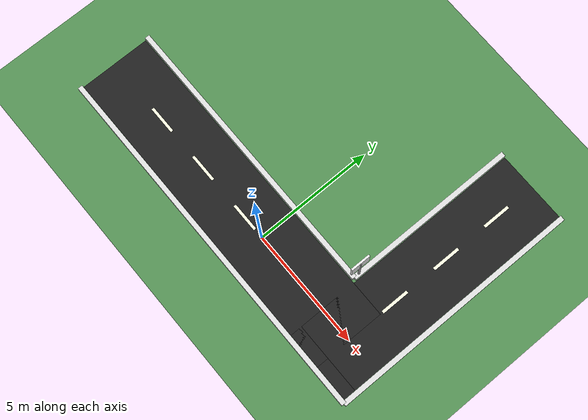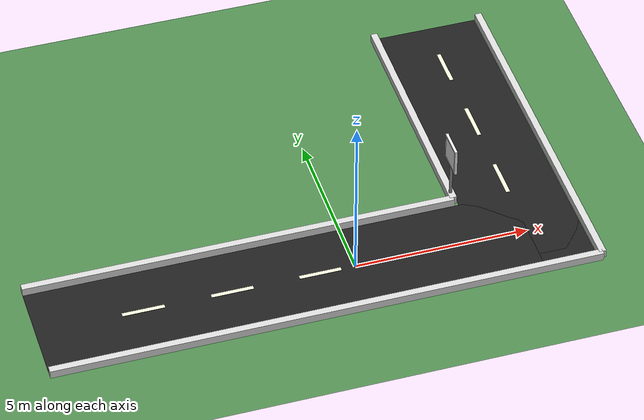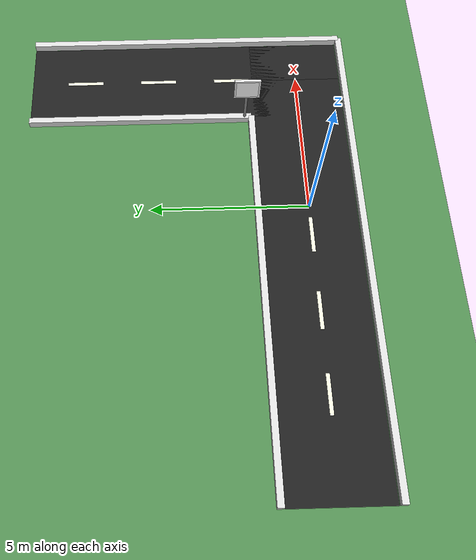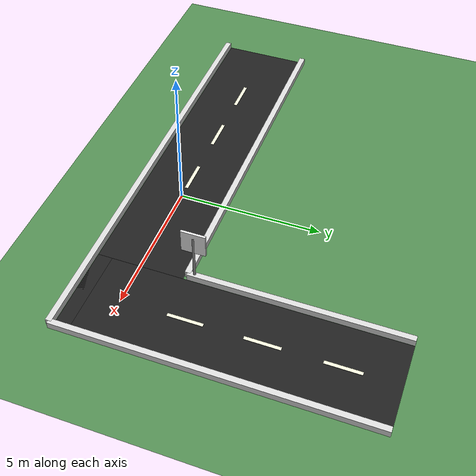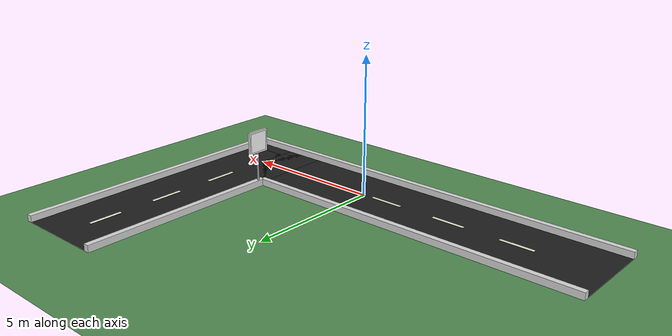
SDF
<sdf version='1.7'>
  <world name='road_world'>
    <light name='sun' type='directional'>
      <cast_shadows>true</cast_shadows>
      <pose>0 0 10 0 0 0</pose>
      <diffuse>0.8 0.8 0.8 1</diffuse>
      <specular>0.2 0.2 0.2 1</specular>
      <attenuation>
        <range>1000</range>
        <constant>0.9</constant>
        <linear>0.01</linear>
        <quadratic>0.001</quadratic>
      </attenuation>
      <direction>-0.5 0.1 -0.9</direction>
    </light>

    <gravity>0 0 -9.8</gravity>
    <magnetic_field>6e-06 2.3e-05 -4.2e-05</magnetic_field>
    <atmosphere type='adiabatic'/>

    <physics name='default_physics' type='ode'>
      <max_step_size>0.001</max_step_size>
      <real_time_factor>1.0</real_time_factor>
      <real_time_update_rate>1000</real_time_update_rate>
    </physics>

    <scene>
      <ambient>0.45 0.45 0.45 1</ambient>
      <background>0.75 0.85 0.95 1</background>
      <shadows>true</shadows>
    </scene>

    <model name='ground_plane'>
      <static>true</static>
      <link name='link'>
        <collision name='collision'>
          <geometry>
            <plane>
              <normal>0 0 1</normal>
              <size>120 120</size>
            </plane>
          </geometry>
          <surface>
            <friction>
              <ode>
                <mu>100</mu>
                <mu2>50</mu2>
              </ode>
            </friction>
          </surface>
        </collision>
        <visual name='visual'>
          <geometry>
            <plane>
              <normal>0 0 1</normal>
              <size>120 120</size>
            </plane>
          </geometry>
          <material>
            <ambient>0.32 0.55 0.32 1</ambient>
            <diffuse>0.32 0.55 0.32 1</diffuse>
          </material>
        </visual>
      </link>
    </model>

    <model name='road_layout'>
      <static>true</static>
      <pose>0 0 0 0 0 0</pose>
      <link name='road_link'>
        <visual name='straight_road_visual'>
          <pose>-2 0 0.01 0 0 0</pose>
          <geometry>
            <box>
              <size>14 3 0.02</size>
            </box>
          </geometry>
          <material>
            <ambient>0.12 0.12 0.12 1</ambient>
            <diffuse>0.12 0.12 0.12 1</diffuse>
          </material>
        </visual>
        <collision name='straight_road_collision'>
          <pose>-2 0 0.01 0 0 0</pose>
          <geometry>
            <box>
              <size>14 3 0.02</size>
            </box>
          </geometry>
        </collision>

        <visual name='turn_road_visual'>
          <pose>5 4 0.01 0 0 1.5708</pose>
          <geometry>
            <box>
              <size>10 3 0.02</size>
            </box>
          </geometry>
          <material>
            <ambient>0.12 0.12 0.12 1</ambient>
            <diffuse>0.12 0.12 0.12 1</diffuse>
          </material>
        </visual>
        <collision name='turn_road_collision'>
          <pose>5 4 0.01 0 0 1.5708</pose>
          <geometry>
            <box>
              <size>10 3 0.02</size>
            </box>
          </geometry>
        </collision>

        <visual name='junction_fill_visual'>
          <pose>5 0 0.01 0 0 0</pose>
          <geometry>
            <box>
              <size>3 3 0.02</size>
            </box>
          </geometry>
          <material>
            <ambient>0.12 0.12 0.12 1</ambient>
            <diffuse>0.12 0.12 0.12 1</diffuse>
          </material>
        </visual>
        <collision name='junction_fill_collision'>
          <pose>5 0 0.01 0 0 0</pose>
          <geometry>
            <box>
              <size>3 3 0.02</size>
            </box>
          </geometry>
        </collision>

        <visual name='lane_mark_straight_1'>
          <pose>-6 0 0.03 0 0 0</pose>
          <geometry>
            <box>
              <size>1.2 0.12 0.01</size>
            </box>
          </geometry>
          <material>
            <ambient>0.95 0.95 0.85 1</ambient>
            <diffuse>0.95 0.95 0.85 1</diffuse>
          </material>
        </visual>
        <visual name='lane_mark_straight_2'>
          <pose>-3.5 0 0.03 0 0 0</pose>
          <geometry>
            <box>
              <size>1.2 0.12 0.01</size>
            </box>
          </geometry>
          <material>
            <ambient>0.95 0.95 0.85 1</ambient>
            <diffuse>0.95 0.95 0.85 1</diffuse>
          </material>
        </visual>
        <visual name='lane_mark_straight_3'>
          <pose>-1 0 0.03 0 0 0</pose>
          <geometry>
            <box>
              <size>1.2 0.12 0.01</size>
            </box>
          </geometry>
          <material>
            <ambient>0.95 0.95 0.85 1</ambient>
            <diffuse>0.95 0.95 0.85 1</diffuse>
          </material>
        </visual>
        <visual name='lane_mark_straight_4'>
          <pose>1.5 0 0.03 0 0 0</pose>
          <geometry>
            <box>
              <size>1.2 0.12 0.01</size>
            </box>
          </geometry>
          <material>
            <ambient>0.95 0.95 0.85 1</ambient>
            <diffuse>0.95 0.95 0.85 1</diffuse>
          </material>
        </visual>
        <visual name='lane_mark_straight_5'>
          <pose>3.8 0 0.03 0 0 0</pose>
          <geometry>
            <box>
              <size>1.2 0.12 0.01</size>
            </box>
          </geometry>
          <material>
            <ambient>0.95 0.95 0.85 1</ambient>
            <diffuse>0.95 0.95 0.85 1</diffuse>
          </material>
        </visual>

        <visual name='lane_mark_turn_1'>
          <pose>5 2.2 0.03 0 0 1.5708</pose>
          <geometry>
            <box>
              <size>1.2 0.12 0.01</size>
            </box>
          </geometry>
          <material>
            <ambient>0.95 0.95 0.85 1</ambient>
            <diffuse>0.95 0.95 0.85 1</diffuse>
          </material>
        </visual>
        <visual name='lane_mark_turn_2'>
          <pose>5 4.7 0.03 0 0 1.5708</pose>
          <geometry>
            <box>
              <size>1.2 0.12 0.01</size>
            </box>
          </geometry>
          <material>
            <ambient>0.95 0.95 0.85 1</ambient>
            <diffuse>0.95 0.95 0.85 1</diffuse>
          </material>
        </visual>
        <visual name='lane_mark_turn_3'>
          <pose>5 7.2 0.03 0 0 1.5708</pose>
          <geometry>
            <box>
              <size>1.2 0.12 0.01</size>
            </box>
          </geometry>
          <material>
            <ambient>0.95 0.95 0.85 1</ambient>
            <diffuse>0.95 0.95 0.85 1</diffuse>
          </material>
        </visual>

        <visual name='curb_left_straight_visual'>
          <pose>-2.81 1.62 0.12 0 0 0</pose>
          <geometry>
            <box>
              <size>12.38 0.2 0.24</size>
            </box>
          </geometry>
          <material>
            <ambient>0.85 0.85 0.85 1</ambient>
            <diffuse>0.85 0.85 0.85 1</diffuse>
          </material>
        </visual>
        <collision name='curb_left_straight_collision'>
          <pose>-2.81 1.62 0.12 0 0 0</pose>
          <geometry>
            <box>
              <size>12.38 0.2 0.24</size>
            </box>
          </geometry>
        </collision>

        <visual name='curb_right_straight_visual'>
          <pose>-1.19 -1.62 0.12 0 0 0</pose>
          <geometry>
            <box>
              <size>15.62 0.2 0.24</size>
            </box>
          </geometry>
          <material>
            <ambient>0.85 0.85 0.85 1</ambient>
            <diffuse>0.85 0.85 0.85 1</diffuse>
          </material>
        </visual>
        <collision name='curb_right_straight_collision'>
          <pose>-1.19 -1.62 0.12 0 0 0</pose>
          <geometry>
            <box>
              <size>15.62 0.2 0.24</size>
            </box>
          </geometry>
        </collision>

        <visual name='curb_left_turn_visual'>
          <pose>3.38 5.31 0.12 0 0 1.5708</pose>
          <geometry>
            <box>
              <size>7.38 0.2 0.24</size>
            </box>
          </geometry>
          <material>
            <ambient>0.85 0.85 0.85 1</ambient>
            <diffuse>0.85 0.85 0.85 1</diffuse>
          </material>
        </visual>
        <collision name='curb_left_turn_collision'>
          <pose>3.38 5.31 0.12 0 0 1.5708</pose>
          <geometry>
            <box>
              <size>7.38 0.2 0.24</size>
            </box>
          </geometry>
        </collision>

        <visual name='curb_right_turn_visual'>
          <pose>6.62 3.69 0.12 0 0 1.5708</pose>
          <geometry>
            <box>
              <size>10.62 0.2 0.24</size>
            </box>
          </geometry>
          <material>
            <ambient>0.85 0.85 0.85 1</ambient>
            <diffuse>0.85 0.85 0.85 1</diffuse>
          </material>
        </visual>
        <collision name='curb_right_turn_collision'>
          <pose>6.62 3.69 0.12 0 0 1.5708</pose>
          <geometry>
            <box>
              <size>10.62 0.2 0.24</size>
            </box>
          </geometry>
        </collision>
      </link>
    </model>

    <model name='left_turn_sign'>
      <static>true</static>
      <pose>3.35 1.85 0 0 0 1.5708</pose>
      <link name='sign_link'>
        <visual name='pole_visual'>
          <pose>0 -0.015 0.95 0 0 0</pose>
          <geometry>
            <cylinder>
              <radius>0.045</radius>
              <length>1.9</length>
            </cylinder>
          </geometry>
          <material>
            <ambient>0.55 0.55 0.55 1</ambient>
            <diffuse>0.55 0.55 0.55 1</diffuse>
          </material>
        </visual>
        <collision name='pole_collision'>
          <pose>0 -0.015 0.95 0 0 0</pose>
          <geometry>
            <cylinder>
              <radius>0.045</radius>
              <length>1.9</length>
            </cylinder>
          </geometry>
        </collision>

        <visual name='board_body_visual'>
          <pose>0 0 1.68 0 0 0</pose>
          <geometry>
            <box>
              <size>0.82 0.08 0.82</size>
            </box>
          </geometry>
          <material>
            <ambient>0.92 0.92 0.92 1</ambient>
            <diffuse>0.92 0.92 0.92 1</diffuse>
          </material>
        </visual>
        <collision name='board_body_collision'>
          <pose>0 0 1.68 0 0 0</pose>
          <geometry>
            <box>
              <size>0.82 0.08 0.82</size>
            </box>
          </geometry>
        </collision>

        <visual name='front_face_visual'>
          <pose>0 0.041 1.68 0 0 0</pose>
          <geometry>
            <mesh>
              <uri>file:///home/rahul/ros2_workspace/install/my_robot_bringup/share/my_robot_bringup/meshes/sign_board.dae</uri>
              <scale>1 1 1</scale>
            </mesh>
          </geometry>
          <material>
            <script>
              <uri>file:///home/rahul/ros2_workspace/install/my_robot_bringup/share/my_robot_bringup/materials/scripts</uri>
              <uri>file:///home/rahul/ros2_workspace/install/my_robot_bringup/share/my_robot_bringup/materials/textures</uri>
              <name>TurnLeftSign/Board</name>
            </script>
            <ambient>1 1 1 1</ambient>
            <diffuse>1 1 1 1</diffuse>
          </material>
        </visual>

        <visual name='back_mount_visual'>
          <pose>0 -0.02 1.68 0 0 0</pose>
          <geometry>
            <box>
              <size>0.12 0.02 0.18</size>
            </box>
          </geometry>
          <material>
            <ambient>0.75 0.75 0.75 1</ambient>
            <diffuse>0.75 0.75 0.75 1</diffuse>
          </material>
        </visual>
      </link>
    </model>

    <model name='top_view_camera'>
      <static>true</static>
      <pose>-1 3.5 16.0 0 0 0</pose>
      <link name='camera_link'>
        <sensor name='top_view_sensor' type='camera'>
          <pose>0 0 0 0 1.5708 1.5708</pose>
          <always_on>true</always_on>
          <visualize>false</visualize>
          <update_rate>12.0</update_rate>
          <camera>
            <horizontal_fov>1.25</horizontal_fov>
            <image>
              <width>960</width>
              <height>720</height>
              <format>R8G8B8</format>
            </image>
            <clip>
              <near>0.1</near>
              <far>80.0</far>
            </clip>
          </camera>
          <plugin name='top_view_camera_controller' filename='libgazebo_ros_camera.so'>
            <frame_name>top_view_camera_link</frame_name>
            <camera_name>top_view_camera</camera_name>
            <image_topic_name>image_raw</image_topic_name>
            <camera_info_topic_name>camera_info</camera_info_topic_name>
          </plugin>
        </sensor>
      </link>
    </model>
  </world>
</sdf>
